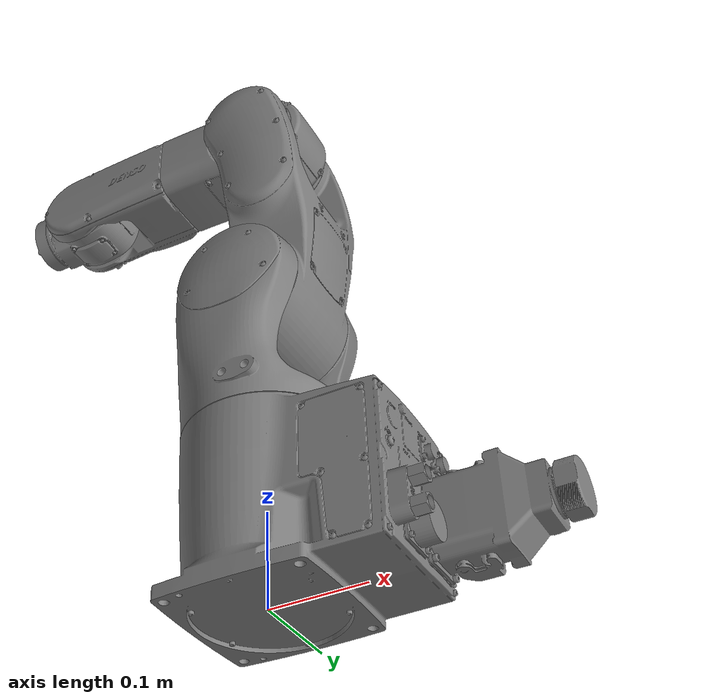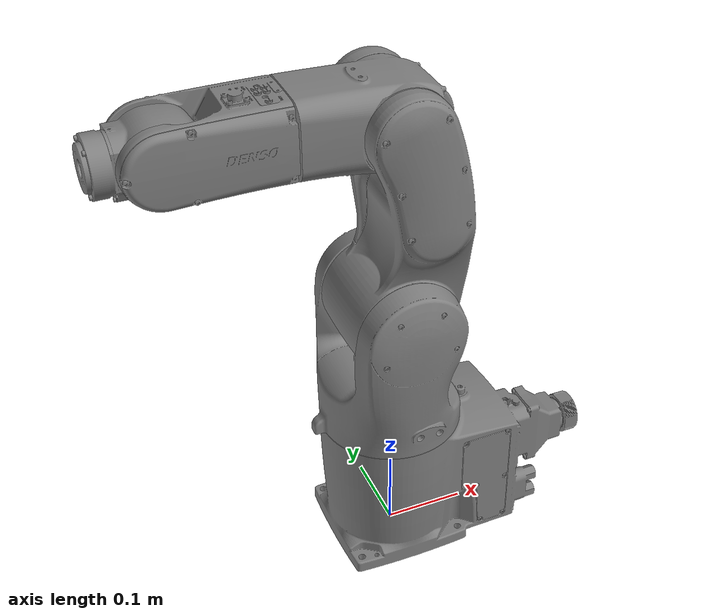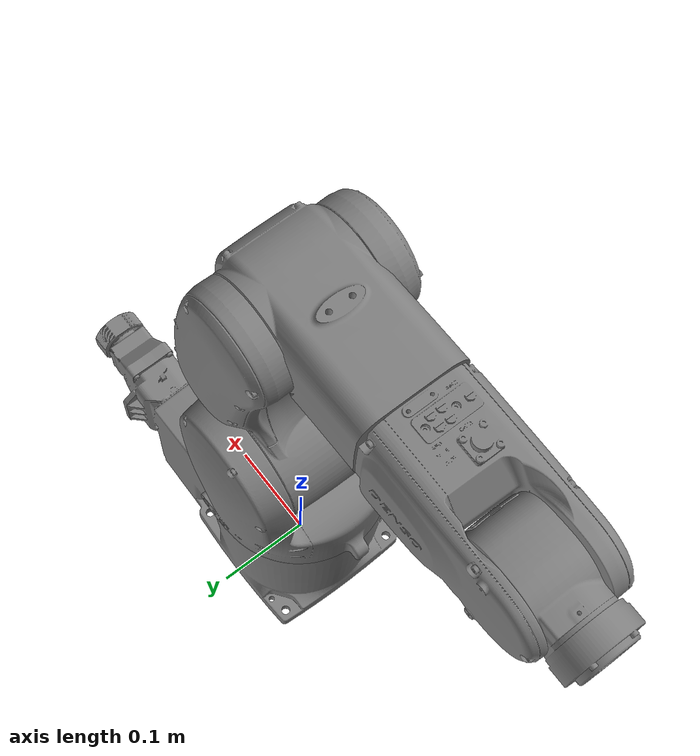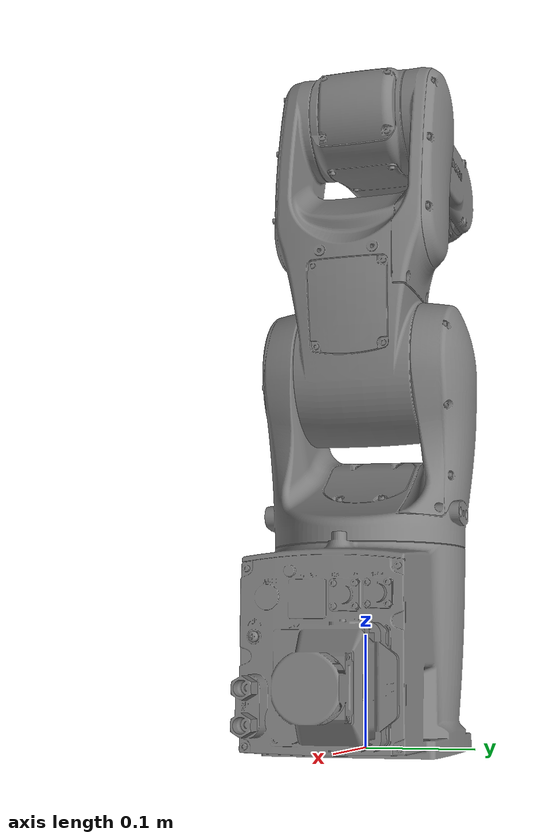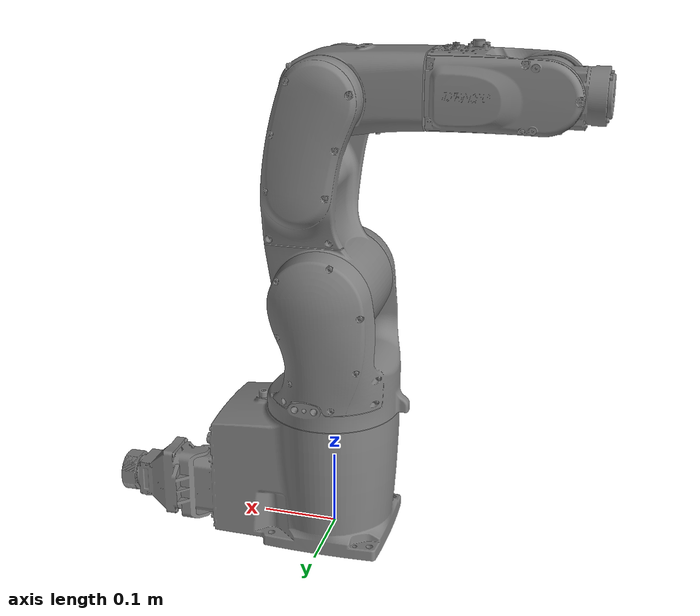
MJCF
<mujoco model="denso">
    <compiler angle="radian" />

    <asset>
        <mesh name="base_link" file="base_link.stl" scale="0.001 0.001 0.001" />
        <mesh name="J2" file="J2.stl" scale="0.001 0.001 0.001" />
        <mesh name="J3" file="J3.stl" scale="0.001 0.001 0.001" />
        <mesh name="J4" file="J4.stl" scale="0.001 0.001 0.001" />
        <mesh name="J1" file="J1.stl" scale="0.001 0.001 0.001" />
        <mesh name="J5" file="J5.stl" scale="0.001 0.001 0.001" />
        <mesh name="J6" file="J6.stl" scale="0.001 0.001 0.001" />
    </asset>

    <worldbody>
        <geom type="mesh" mesh="base_link" />
        <body name="J1" pos="0 0.004 0.1445">
            <inertial pos="-0.00543802 -0.00933637 0.108956"
                quat="0.99215 0.123755 0.00152193 -0.017931" mass="2.03476"
                diaginertia="0.0160536 0.012538 0.00875348" />
            <joint name="joint_1" pos="0 0 0" axis="0 0 1" range="-2.96706 2.96706"
                actuatorfrcrange="-1 1" />
            <geom pos="0 -0.004 -0.1445" type="mesh" mesh="J1" />
            <body name="J2" pos="0 -0.0805 0.1965">
                <inertial pos="0.0131209 0.0807287 0.0827291"
                    quat="0.999405 -0.0214235 0.0249224 0.0104547" mass="3.46317"
                    diaginertia="0.0357491 0.0329189 0.0100009" />
                <joint name="joint_2" pos="0 0 0" axis="0 1 0" range="-2.0944 2.0944"
                    actuatorfrcrange="-1 1" />
                <geom pos="0 0.0765 -0.341" type="mesh" mesh="J2" />
                <body name="J3" pos="0 0.009 0.25">
                    <inertial pos="-0.0319027 0.0678909 0.00380876"
                        quat="0.0012934 0.746817 -0.0113232 0.664932" mass="1.48374"
                        diaginertia="0.00451902 0.00440861 0.00220437" />
                    <joint name="joint_3" pos="0 0 0" axis="0 1 0" range="-2.0944 2.63545"
                        actuatorfrcrange="-1 1" />
                    <geom pos="0 0.0675 -0.591" quat="1 0 0 0" type="mesh" mesh="J3" />
                    <body name="J4" pos="-0.105 0.0715 0.01">
                        <inertial pos="-0.0755386 -0.00214597 0.000983974"
                            quat="-0.0146242 0.705922 0.0296457 0.707518" mass="0.996038"
                            diaginertia="0.00309618 0.00271247 0.00152835" />
                        <joint name="joint_4" pos="0 0 0" axis="-1 0 0" range="-4.71239 4.71239"
                            actuatorfrcrange="-1 1" />
                        <geom pos="0.105 -0.004 -0.601" quat="1 0 0 0" type="mesh" mesh="J4" />
                        <body name="J5" pos="-0.15 -0.0365 0">
                            <inertial pos="-0.0115322 0.0360268 -0.00114949"
                                quat="0.50032 0.504752 0.492879 0.501972" mass="0.435628"
                                diaginertia="0.000599044 0.000525991 0.000305965" />
                            <joint name="joint_5" pos="0 0 0" axis="0 1 0" range="-2.0944 2.0944"
                                actuatorfrcrange="-1 1" />
                            <geom pos="0.255 0.0325 -0.601" quat="1 0 0 0" type="mesh" mesh="J5" />
                            <body name="J6" pos="-0.068 0.0365 0">
                                <inertial pos="-0.00359897 0 0.000231037" mass="0.0109314"
                                    diaginertia="4e-06 2e-06 2e-06" />
                                <joint name="joint_6" pos="0 0 0" axis="-1 0 0"
                                    range="-6.28319 6.28319" actuatorfrcrange="-1 1" />
                                <geom pos="0.323 -0.004 -0.601" type="mesh" mesh="J6" />
                            </body>
                        </body>
                    </body>
                </body>
            </body>
        </body>
    </worldbody>
    <actuator>
        <position name="joint_1" joint="joint_1" ctrllimited="true" ctrlrange="-1 1" kp="10" kv="10" />
        <position name="joint_2" joint="joint_2" ctrllimited="true" ctrlrange="-1 1" kp="10" kv="10" />
        <position name="joint_3" joint="joint_3" ctrllimited="true" ctrlrange="-1 1" kp="10" kv="10" />
        <position name="joint_4" joint="joint_4" ctrllimited="true" ctrlrange="-1 1" kp="10" kv="10" />
        <position name="joint_5" joint="joint_5" ctrllimited="true" ctrlrange="-1 1" kp="10" kv="10" />
        <position name="joint_6" joint="joint_6" ctrllimited="true" ctrlrange="-1 1" kp="10" kv="10" />
    </actuator>
</mujoco>
